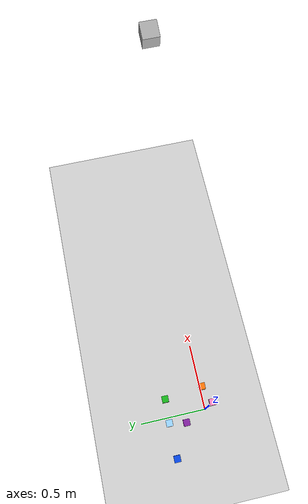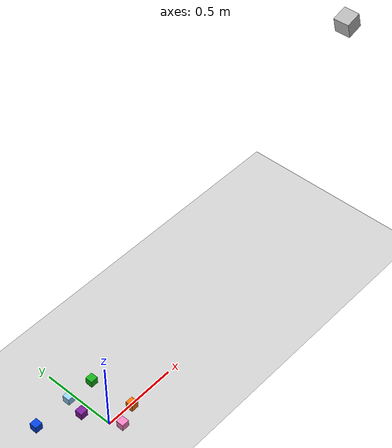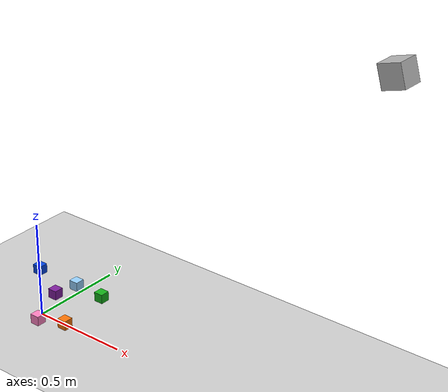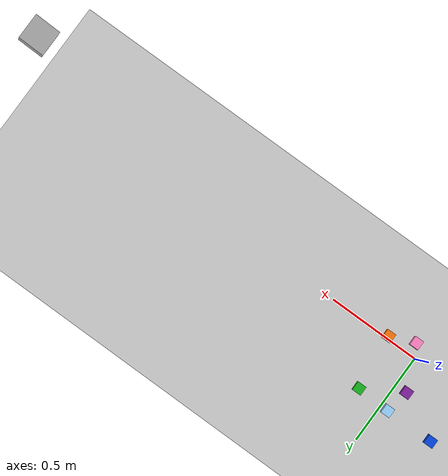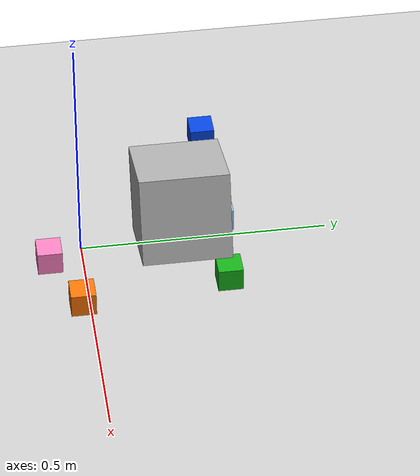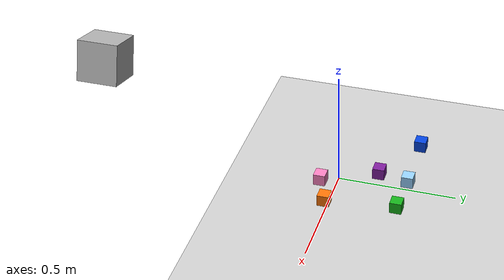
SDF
<sdf version="1.8">
 <world name="panda_world">
  <gravity>0 0 -9.8</gravity>
  <magnetic_field>5.5645e-6 22.8758e-6 -42.3884e-6</magnetic_field>
  <physics name="1ms" default="false" type="ignored">
   <max_step_size>0.001</max_step_size>
   <real_time_factor>1.0</real_time_factor>
   <real_time_update_rate>1000.0</real_time_update_rate>
   <max_contacts>20</max_contacts>
  </physics>
  <scene>
   <ambient>0.4 0.4 0.4 1</ambient>
   <background>0.7 0.7 0.7 1</background>
   <shadows>true</shadows>
   <grid>true</grid>
   <origin_visual>true</origin_visual>
  </scene>
  <light name="sun" type="directional">
   <intensity>1.0</intensity>
   <diffuse>0.8 0.8 0.8 1</diffuse>
   <specular>0.2 0.2 0.2 1</specular>
   <attenuation>
    <range>1000.0</range>
    <linear>0.01</linear>
    <constant>0.9</constant>
    <quadratic>0.001</quadratic>
   </attenuation>
   <direction>-0.5 0.1 -0.9</direction>
   <spot><inner_angle>0.0</inner_angle><outer_angle>0.0</outer_angle><falloff>0.0</falloff></spot>
   <pose>0 0 10 0 -0 0</pose>
  </light>
  <frame name="tabletop_1"><pose relative_to="table1">0 0 1.015 0 0 0</pose></frame>
  <frame name="tabletop_2"><pose relative_to="table2">0 0 1.015 0 0 0</pose></frame>
  <frame name="main_rotation"/>
  <frame name="angle_rotation"><pose>0 0 0 0 0 0.78539816339</pose></frame>
  <frame name="side_rotation"><pose>0 0 0 0 0 1.57079632679</pose></frame>
  <model name="ground_plane">
   <static>true</static>
   <link name="link">
    <collision name="collision">
     <laser_retro>0.0</laser_retro>
     <geometry><plane><normal>0 0 1</normal><size>1000 1000</size></plane></geometry>
     <surface>
      <friction>
       <ode><mu>1.0</mu><mu2>1.0</mu2><fdir1>0 0 0</fdir1><slip1>0.0</slip1><slip2>0.0</slip2></ode>
      </friction>
      <contact>
       <collide_without_contact>false</collide_without_contact>
       <collide_without_contact_bitmask>1</collide_without_contact_bitmask>
       <collide_bitmask>65535</collide_bitmask>
       <category_bitmask>65535</category_bitmask>
       <poissons_ratio>0.3</poissons_ratio>
       <elastic_modulus>-1.0</elastic_modulus>
      </contact>
     </surface>
    </collision>
    <visual name="visual">
     <laser_retro>0.0</laser_retro>
     <transparency>0.0</transparency>
     <visibility_flags>4294967295</visibility_flags>
     <material>
      <render_order>0.0</render_order>
      <lighting>true</lighting>
      <ambient>0.8 0.8 0.8 1</ambient>
      <diffuse>0.8 0.8 0.8 1</diffuse>
      <specular>0.8 0.8 0.8 1</specular>
      <emissive>0 0 0 1</emissive>
      <double_sided>false</double_sided>
     </material>
     <geometry><plane><normal>0 0 1</normal><size>100 100</size></plane></geometry>
     <plugin name="__default__" filename="__default__"/>
    </visual>
   </link>
   <plugin name="__default__" filename="__default__"/>
  </model>
  <model name="main_camera">
   <static>true</static>
   <pose relative_to="main_rotation">2 0 1.75 -0 0.282863 3.14</pose>
   <link name="link">
    <pose>0.05 0.05 0.05 0 -0 0</pose>
    <visual name="visual">
     <laser_retro>0.0</laser_retro>
     <transparency>0.0</transparency>
     <visibility_flags>4294967295</visibility_flags>
     <geometry><box><size>0.1 0.1 0.1</size></box></geometry>
    </visual>
    <sensor name="camera" type="camera">
     <always_on>true</always_on>
     <update_rate>30.0</update_rate>
     <visualize>true</visualize>
     <topic>main_camera</topic>
     <enable_metrics>false</enable_metrics>
     <camera name="__default__">
      <horizontal_fov>1.13446</horizontal_fov>
      <image><width>1920</width><height>1080</height><format>R8G8B8</format></image>
      <clip><near>0.01</near><far>100.0</far></clip>
      <visibility_mask>4294967295</visibility_mask>
     </camera>
    </sensor>
   </link>
   <joint name="connector" type="fixed">
    <parent>world</parent>
    <child>link</child>
    <gearbox_ratio>1.0</gearbox_ratio>
    <gearbox_reference_body>__default__</gearbox_reference_body>
    <thread_pitch>1.0</thread_pitch>
   </joint>
  </model>
  <model name="angle_camera">
   <static>true</static>
   <pose relative_to="angle_rotation">2 0 1.75 -0 0.282863 3.14</pose>
   <link name="link">
    <pose>0.05 0.05 0.05 0 -0 0</pose>
    <visual name="visual">
     <laser_retro>0.0</laser_retro>
     <transparency>0.0</transparency>
     <visibility_flags>4294967295</visibility_flags>
     <geometry><box><size>0.1 0.1 0.1</size></box></geometry>
    </visual>
    <sensor name="camera" type="camera">
     <always_on>true</always_on>
     <update_rate>30.0</update_rate>
     <visualize>true</visualize>
     <topic>angle_camera</topic>
     <enable_metrics>false</enable_metrics>
     <camera name="__default__">
      <horizontal_fov>1.13446</horizontal_fov>
      <image><width>1920</width><height>1080</height><format>R8G8B8</format></image>
      <clip><near>0.01</near><far>100.0</far></clip>
      <visibility_mask>4294967295</visibility_mask>
     </camera>
    </sensor>
   </link>
   <joint name="connector" type="fixed">
    <parent>world</parent>
    <child>link</child>
    <gearbox_ratio>1.0</gearbox_ratio>
    <gearbox_reference_body>__default__</gearbox_reference_body>
    <thread_pitch>1.0</thread_pitch>
   </joint>
  </model>
  <model name="side_camera">
   <static>true</static>
   <pose relative_to="side_rotation">2 0 1.75 -0 0.282863 3.14</pose>
   <link name="link">
    <pose>0.05 0.05 0.05 0 -0 0</pose>
    <visual name="visual">
     <laser_retro>0.0</laser_retro>
     <transparency>0.0</transparency>
     <visibility_flags>4294967295</visibility_flags>
     <geometry><box><size>0.1 0.1 0.1</size></box></geometry>
    </visual>
    <sensor name="camera" type="camera">
     <always_on>true</always_on>
     <update_rate>30.0</update_rate>
     <visualize>true</visualize>
     <topic>side_camera</topic>
     <enable_metrics>false</enable_metrics>
     <camera name="__default__">
      <horizontal_fov>1.13446</horizontal_fov>
      <image><width>1920</width><height>1080</height><format>R8G8B8</format></image>
      <clip><near>0.01</near><far>100.0</far></clip>
      <visibility_mask>4294967295</visibility_mask>
     </camera>
    </sensor>
   </link>
   <joint name="connector" type="fixed">
    <parent>world</parent>
    <child>link</child>
    <gearbox_ratio>1.0</gearbox_ratio>
    <gearbox_reference_body>__default__</gearbox_reference_body>
    <thread_pitch>1.0</thread_pitch>
   </joint>
  </model>
  <model name="box_copy_0">
   <static>false</static>
   <pose relative_to="tabletop_2">-0.06329336222070603 0.16069264891113394 0.025 0 0 0</pose>
   <link name="box_link">
    <must_be_base_link>true</must_be_base_link>
    <inertial>
     <mass>1.0</mass>
     <inertia>
      <ixx>0.0004</ixx>
      <ixy>0.0</ixy>
      <ixz>0.0</ixz>
      <iyy>0.0004</iyy>
      <iyz>0.0</iyz>
      <izz>0.0004</izz>
     </inertia>
    </inertial>
    <collision name="box_collision">
     <laser_retro>0.0</laser_retro>
     <geometry><box><size>.05 .05 .05</size></box></geometry>
     <surface>
      <friction>
       <ode><mu>1.0</mu><mu2>1.0</mu2><fdir1>0 0 0</fdir1><slip1>0.0</slip1><slip2>0.0</slip2></ode>
      </friction>
      <contact>
       <collide_without_contact>false</collide_without_contact>
       <collide_without_contact_bitmask>1</collide_without_contact_bitmask>
       <collide_bitmask>65535</collide_bitmask>
       <category_bitmask>65535</category_bitmask>
       <poissons_ratio>0.3</poissons_ratio>
       <elastic_modulus>-1.0</elastic_modulus>
      </contact>
     </surface>
    </collision>
    <visual name="box_visual">
     <laser_retro>0.0</laser_retro>
     <transparency>0.0</transparency>
     <visibility_flags>4294967295</visibility_flags>
     <material>
      <render_order>0.0</render_order>
      <lighting>true</lighting>
      <ambient>0.49411764705882355 0.11764705882352941 0.611764705882353 1.0</ambient>
      <diffuse>0.49411764705882355 0.11764705882352941 0.611764705882353 1.0</diffuse>
      <specular>0.49411764705882355 0.11764705882352941 0.611764705882353 1.0</specular>
      <emissive>0 0 0 1</emissive>
      <double_sided>false</double_sided>
     </material>
     <geometry><box><size>.05 .05 .05</size></box></geometry>
    </visual>
   </link>
  </model>
  <model name="box_copy_1">
   <static>false</static>
   <pose relative_to="tabletop_2">0.040894409944973176 -0.0677429987374834 0.025 0 0 0</pose>
   <link name="box_link">
    <must_be_base_link>true</must_be_base_link>
    <inertial>
     <mass>1.0</mass>
     <inertia>
      <ixx>0.0004</ixx>
      <ixy>0.0</ixy>
      <ixz>0.0</ixz>
      <iyy>0.0004</iyy>
      <iyz>0.0</iyz>
      <izz>0.0004</izz>
     </inertia>
    </inertial>
    <collision name="box_collision">
     <laser_retro>0.0</laser_retro>
     <geometry><box><size>.05 .05 .05</size></box></geometry>
     <surface>
      <friction>
       <ode><mu>1.0</mu><mu2>1.0</mu2><fdir1>0 0 0</fdir1><slip1>0.0</slip1><slip2>0.0</slip2></ode>
      </friction>
      <contact>
       <collide_without_contact>false</collide_without_contact>
       <collide_without_contact_bitmask>1</collide_without_contact_bitmask>
       <collide_bitmask>65535</collide_bitmask>
       <category_bitmask>65535</category_bitmask>
       <poissons_ratio>0.3</poissons_ratio>
       <elastic_modulus>-1.0</elastic_modulus>
      </contact>
     </surface>
    </collision>
    <visual name="box_visual">
     <laser_retro>0.0</laser_retro>
     <transparency>0.0</transparency>
     <visibility_flags>4294967295</visibility_flags>
     <material>
      <render_order>0.0</render_order>
      <lighting>true</lighting>
      <ambient>1.0 0.5058823529411764 0.7529411764705882 1.0</ambient>
      <diffuse>1.0 0.5058823529411764 0.7529411764705882 1.0</diffuse>
      <specular>1.0 0.5058823529411764 0.7529411764705882 1.0</specular>
      <emissive>0 0 0 1</emissive>
      <double_sided>false</double_sided>
     </material>
     <geometry><box><size>.05 .05 .05</size></box></geometry>
    </visual>
   </link>
  </model>
  <model name="box_copy_2">
   <static>false</static>
   <pose relative_to="tabletop_2">-0.03911608656335408 0.2895094299446635 0.025 0 0 0</pose>
   <link name="box_link">
    <must_be_base_link>true</must_be_base_link>
    <inertial>
     <mass>1.0</mass>
     <inertia>
      <ixx>0.0004</ixx>
      <ixy>0.0</ixy>
      <ixz>0.0</ixz>
      <iyy>0.0004</iyy>
      <iyz>0.0</iyz>
      <izz>0.0004</izz>
     </inertia>
    </inertial>
    <collision name="box_collision">
     <laser_retro>0.0</laser_retro>
     <geometry><box><size>.05 .05 .05</size></box></geometry>
     <surface>
      <friction>
       <ode><mu>1.0</mu><mu2>1.0</mu2><fdir1>0 0 0</fdir1><slip1>0.0</slip1><slip2>0.0</slip2></ode>
      </friction>
      <contact>
       <collide_without_contact>false</collide_without_contact>
       <collide_without_contact_bitmask>1</collide_without_contact_bitmask>
       <collide_bitmask>65535</collide_bitmask>
       <category_bitmask>65535</category_bitmask>
       <poissons_ratio>0.3</poissons_ratio>
       <elastic_modulus>-1.0</elastic_modulus>
      </contact>
     </surface>
    </collision>
    <visual name="box_visual">
     <laser_retro>0.0</laser_retro>
     <transparency>0.0</transparency>
     <visibility_flags>4294967295</visibility_flags>
     <material>
      <render_order>0.0</render_order>
      <lighting>true</lighting>
      <ambient>0.5843137254901961 0.8156862745098039 0.9882352941176471 1.0</ambient>
      <diffuse>0.5843137254901961 0.8156862745098039 0.9882352941176471 1.0</diffuse>
      <specular>0.5843137254901961 0.8156862745098039 0.9882352941176471 1.0</specular>
      <emissive>0 0 0 1</emissive>
      <double_sided>false</double_sided>
     </material>
     <geometry><box><size>.05 .05 .05</size></box></geometry>
    </visual>
   </link>
  </model>
  <model name="box_copy_3">
   <static>false</static>
   <pose relative_to="tabletop_2">0.17289178432764762 -0.014750105108689793 0.025 0 0 0</pose>
   <link name="box_link">
    <must_be_base_link>true</must_be_base_link>
    <inertial>
     <mass>1.0</mass>
     <inertia>
      <ixx>0.0004</ixx>
      <ixy>0.0</ixy>
      <ixz>0.0</ixz>
      <iyy>0.0004</iyy>
      <iyz>0.0</iyz>
      <izz>0.0004</izz>
     </inertia>
    </inertial>
    <collision name="box_collision">
     <laser_retro>0.0</laser_retro>
     <geometry><box><size>.05 .05 .05</size></box></geometry>
     <surface>
      <friction>
       <ode><mu>1.0</mu><mu2>1.0</mu2><fdir1>0 0 0</fdir1><slip1>0.0</slip1><slip2>0.0</slip2></ode>
      </friction>
      <contact>
       <collide_without_contact>false</collide_without_contact>
       <collide_without_contact_bitmask>1</collide_without_contact_bitmask>
       <collide_bitmask>65535</collide_bitmask>
       <category_bitmask>65535</category_bitmask>
       <poissons_ratio>0.3</poissons_ratio>
       <elastic_modulus>-1.0</elastic_modulus>
      </contact>
     </surface>
    </collision>
    <visual name="box_visual">
     <laser_retro>0.0</laser_retro>
     <transparency>0.0</transparency>
     <visibility_flags>4294967295</visibility_flags>
     <material>
      <render_order>0.0</render_order>
      <lighting>true</lighting>
      <ambient>0.9764705882352941 0.45098039215686275 0.023529411764705882 1.0</ambient>
      <diffuse>0.9764705882352941 0.45098039215686275 0.023529411764705882 1.0</diffuse>
      <specular>0.9764705882352941 0.45098039215686275 0.023529411764705882 1.0</specular>
      <emissive>0 0 0 1</emissive>
      <double_sided>false</double_sided>
     </material>
     <geometry><box><size>.05 .05 .05</size></box></geometry>
    </visual>
   </link>
  </model>
  <model name="box_copy_4">
   <static>false</static>
   <pose relative_to="tabletop_2">-0.29979571925400306 0.28725944905401696 0.025 0 0 0</pose>
   <link name="box_link">
    <must_be_base_link>true</must_be_base_link>
    <inertial>
     <mass>1.0</mass>
     <inertia>
      <ixx>0.0004</ixx>
      <ixy>0.0</ixy>
      <ixz>0.0</ixz>
      <iyy>0.0004</iyy>
      <iyz>0.0</iyz>
      <izz>0.0004</izz>
     </inertia>
    </inertial>
    <collision name="box_collision">
     <laser_retro>0.0</laser_retro>
     <geometry><box><size>.05 .05 .05</size></box></geometry>
     <surface>
      <friction>
       <ode><mu>1.0</mu><mu2>1.0</mu2><fdir1>0 0 0</fdir1><slip1>0.0</slip1><slip2>0.0</slip2></ode>
      </friction>
      <contact>
       <collide_without_contact>false</collide_without_contact>
       <collide_without_contact_bitmask>1</collide_without_contact_bitmask>
       <collide_bitmask>65535</collide_bitmask>
       <category_bitmask>65535</category_bitmask>
       <poissons_ratio>0.3</poissons_ratio>
       <elastic_modulus>-1.0</elastic_modulus>
      </contact>
     </surface>
    </collision>
    <visual name="box_visual">
     <laser_retro>0.0</laser_retro>
     <transparency>0.0</transparency>
     <visibility_flags>4294967295</visibility_flags>
     <material>
      <render_order>0.0</render_order>
      <lighting>true</lighting>
      <ambient>0.011764705882352941 0.2627450980392157 0.8745098039215686 1.0</ambient>
      <diffuse>0.011764705882352941 0.2627450980392157 0.8745098039215686 1.0</diffuse>
      <specular>0.011764705882352941 0.2627450980392157 0.8745098039215686 1.0</specular>
      <emissive>0 0 0 1</emissive>
      <double_sided>false</double_sided>
     </material>
     <geometry><box><size>.05 .05 .05</size></box></geometry>
    </visual>
   </link>
  </model>
  <model name="box_copy_5">
   <static>false</static>
   <pose relative_to="tabletop_2">0.14037326314193177 0.28279746340727135 0.025 0 0 0</pose>
   <link name="box_link">
    <must_be_base_link>true</must_be_base_link>
    <inertial>
     <mass>1.0</mass>
     <inertia>
      <ixx>0.0004</ixx>
      <ixy>0.0</ixy>
      <ixz>0.0</ixz>
      <iyy>0.0004</iyy>
      <iyz>0.0</iyz>
      <izz>0.0004</izz>
     </inertia>
    </inertial>
    <collision name="box_collision">
     <laser_retro>0.0</laser_retro>
     <geometry><box><size>.05 .05 .05</size></box></geometry>
     <surface>
      <friction>
       <ode><mu>1.0</mu><mu2>1.0</mu2><fdir1>0 0 0</fdir1><slip1>0.0</slip1><slip2>0.0</slip2></ode>
      </friction>
      <contact>
       <collide_without_contact>false</collide_without_contact>
       <collide_without_contact_bitmask>1</collide_without_contact_bitmask>
       <collide_bitmask>65535</collide_bitmask>
       <category_bitmask>65535</category_bitmask>
       <poissons_ratio>0.3</poissons_ratio>
       <elastic_modulus>-1.0</elastic_modulus>
      </contact>
     </surface>
    </collision>
    <visual name="box_visual">
     <laser_retro>0.0</laser_retro>
     <transparency>0.0</transparency>
     <visibility_flags>4294967295</visibility_flags>
     <material>
      <render_order>0.0</render_order>
      <lighting>true</lighting>
      <ambient>0.08235294117647059 0.6901960784313725 0.10196078431372549 1.0</ambient>
      <diffuse>0.08235294117647059 0.6901960784313725 0.10196078431372549 1.0</diffuse>
      <specular>0.08235294117647059 0.6901960784313725 0.10196078431372549 1.0</specular>
      <emissive>0 0 0 1</emissive>
      <double_sided>false</double_sided>
     </material>
     <geometry><box><size>.05 .05 .05</size></box></geometry>
    </visual>
   </link>
  </model>
  <plugin name="ignition::gazebo::systems::Sensors" filename="ignition-gazebo-sensors-system">
   <render_engine>ogre</render_engine>
  </plugin>
  <plugin name="ignition::gazebo::systems::UserCommands" filename="ignition-gazebo-user-commands-system"/>
  <plugin name="ignition::gazebo::systems::SceneBroadcaster" filename="ignition-gazebo-scene-broadcaster-system"/>
 </world>
</sdf>
